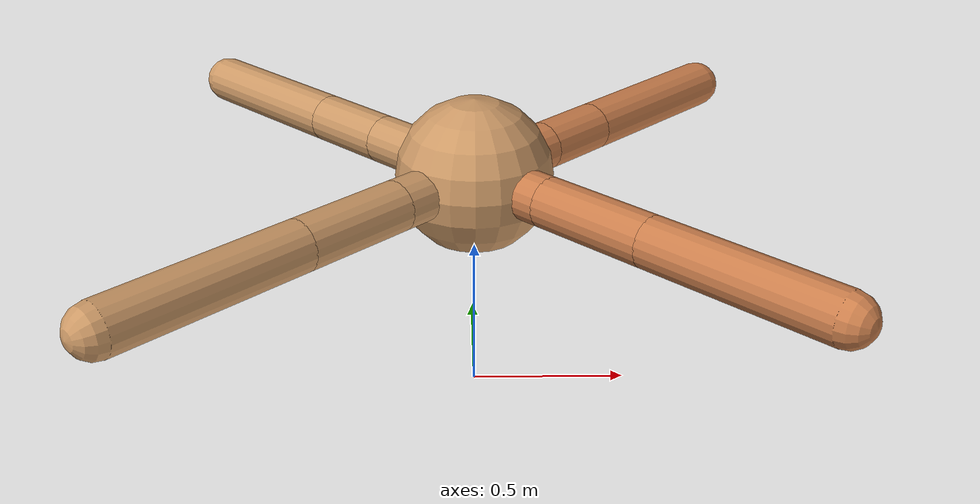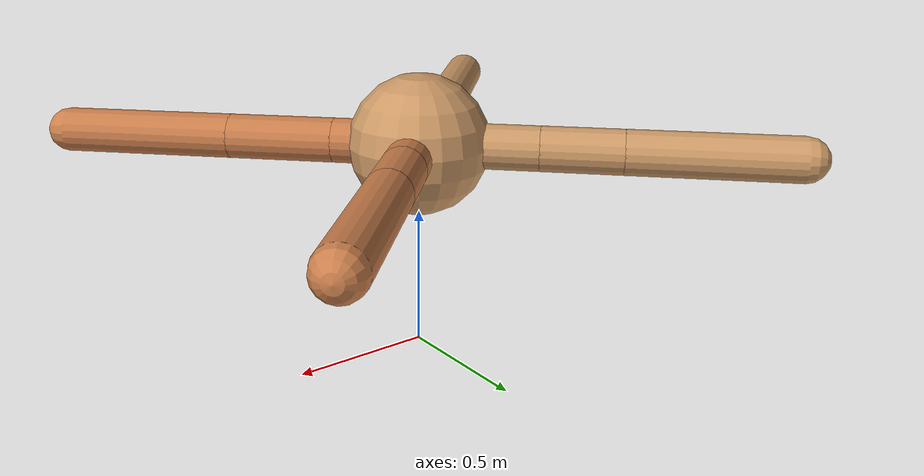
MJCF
<mujoco model="ant">
  <compiler angle="degree" coordinate="local" inertiafromgeom="true" />
  <option integrator="RK4" timestep="0.01" />
  <custom>
    <numeric data="0.0 0.0 0.55 1.0 0.0 0.0 0.0 0.0 1.0 0.0 -1.0 0.0 -1.0 0.0 1.0" name="init_qpos" />
  </custom>
  <default>
    <joint armature="1" damping="1" limited="true" />
    <geom conaffinity="0" condim="3" density="5.0" friction="1.5 0.1 0.1" margin="0.01" rgba="0.8 0.6 0.4 1" />
  </default>
  <worldbody>
    <body name="torso" pos="0 0 0.75">
      <geom name="torso_geom" pos="0 0 0" size="0.25" type="sphere" />

      <body name="front_left_leg" pos="0 0 0">
        <geom fromto="0.0 0.0 0.0 0.2311076732942423 0.2311076732942423 0.0" name="aux_1_geom" size="0.08" type="capsule" rgba=".8 .5 .3 1" />
        <body name="aux_1" pos="0.2311076732942423 0.2311076732942423 0.0">
          <joint axis="0 0 1" name="hip_1" pos="0.0 0.0 0.0" range="-40 40" type="hinge" />
          <geom fromto="0.0 0.0 0.0 0.17585631110694352 0.17585631110694352 0.0" name="left_leg_geom" size="0.08" type="capsule" rgba=".8 .5 .3 1" />
          <body pos="0.17585631110694352 0.17585631110694352 0.0" name="front_left_foot">
            <joint axis="-1 1 0" name="ankle_1" pos="0.0 0.0 0.0" range="30 100" type="hinge" />
            <geom fromto="0.0 0.0 0.0 0.4344147530819317 0.4344147530819317 0.0" name="left_ankle_geom" size="0.08" type="capsule" rgba=".8 .5 .3 1" />
          </body>
        </body>
      </body>
      <body name="front_right_leg" pos="0 0 0">
        <geom fromto="0.0 0.0 0.0 -0.29800418236943754 0.29800418236943754 0.0" name="aux_2_geom" size="0.08" type="capsule" />
        <body name="aux_2" pos="-0.29800418236943754 0.29800418236943754 0.0">
          <joint axis="0 0 1" name="hip_2" pos="0.0 0.0 0.0" range="-40 40" type="hinge" />
          <geom fromto="0.0 0.0 0.0 -0.20150712348304012 0.20150712348304012 0.0" name="right_leg_geom" size="0.08" type="capsule" />
          <body pos="-0.20150712348304012 0.20150712348304012 0.0" name="front_right_foot">
            <joint axis="1 1 0" name="ankle_2" pos="0.0 0.0 0.0" range="-100 -30" type="hinge" />
            <geom fromto="0.0 0.0 0.0 -0.41739487722167135 0.41739487722167135 0.0" name="right_ankle_geom" size="0.08" type="capsule" />
          </body>
        </body>
      </body>
      <body name="left_back_leg" pos="0 0 0">
        <geom fromto="0.0 0.0 0.0 -0.23493080429777 -0.23493080429777 0.0" name="aux_3_geom" size="0.08" type="capsule" />
        <body name="aux_3" pos="-0.23493080429777 -0.23493080429777 0.0">
          <joint axis="0 0 1" name="hip_3" pos="0.0 0.0 0.0" range="-40 40" type="hinge" />
          <geom fromto="0.0 0.0 0.0 -0.2590361352810291 -0.2590361352810291 0.0" name="back_leg_geom" size="0.08" type="capsule" />
          <body pos="-0.2590361352810291 -0.2590361352810291 0.0" name="left_back_foot">
            <joint axis="-1 1 0" name="ankle_3" pos="0.0 0.0 0.0" range="-100 -30" type="hinge" />
            <geom fromto="0.0 0.0 0.0 -0.45623687248298755 -0.45623687248298755 0.0" name="third_ankle_geom" size="0.08" type="capsule" />
          </body>
        </body>
      </body>
      <body name="right_back_leg" pos="0 0 0">
        <geom fromto="0.0 0.0 0.0 0.21576509681482628 -0.21576509681482628 0.0" name="aux_4_geom" size="0.08" type="capsule" rgba=".8 .5 .3 1" />
        <body name="aux_4" pos="0.21576509681482628 -0.21576509681482628 0.0">
          <joint axis="0 0 1" name="hip_4" pos="0.0 0.0 0.0" range="-40 40" type="hinge" />
          <geom fromto="0.0 0.0 0.0 0.2688128136409879 -0.2688128136409879 0.0" name="rightback_leg_geom" size="0.08" type="capsule" rgba=".8 .5 .3 1" />
          <body pos="0.2688128136409879 -0.2688128136409879 0.0" name="right_back_foot">
            <joint axis="1 1 0" name="ankle_4" pos="0.0 0.0 0.0" range="30 100" type="hinge" />
            <geom fromto="0.0 0.0 0.0 0.4377013751399056 -0.4377013751399056 0.0" name="fourth_ankle_geom" size="0.08" type="capsule" rgba=".8 .5 .3 1" />
          </body>
        </body>
      </body>
    </body>
  </worldbody>
  <actuator>
    <motor ctrllimited="true" ctrlrange="-1.0 1.0" joint="hip_4" gear="150" />
    <motor ctrllimited="true" ctrlrange="-1.0 1.0" joint="ankle_4" gear="150" />
    <motor ctrllimited="true" ctrlrange="-1.0 1.0" joint="hip_1" gear="150" />
    <motor ctrllimited="true" ctrlrange="-1.0 1.0" joint="ankle_1" gear="150" />
    <motor ctrllimited="true" ctrlrange="-1.0 1.0" joint="hip_2" gear="150" />
    <motor ctrllimited="true" ctrlrange="-1.0 1.0" joint="ankle_2" gear="150" />
    <motor ctrllimited="true" ctrlrange="-1.0 1.0" joint="hip_3" gear="150" />
    <motor ctrllimited="true" ctrlrange="-1.0 1.0" joint="ankle_3" gear="150" />
  </actuator>
</mujoco>
